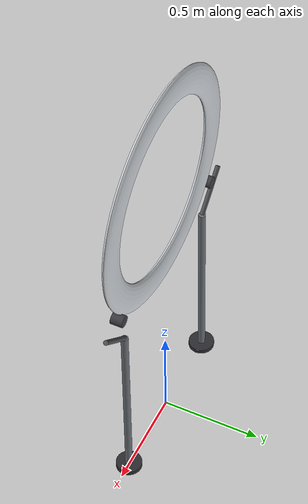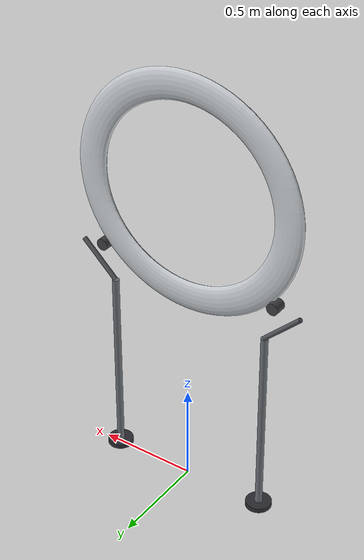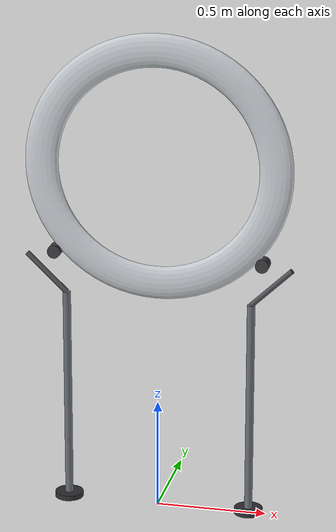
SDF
<?xml version='1.0'?>
<sdf version='1.7'>
  <model name='craic_2026_ring'>
    <static>1</static>
    <link name='ring_frame'>
      <pose>0 0 1.6 0 0 0</pose>

      <collision name='ring_collision_0'>
        <pose>0.525 0 0 0 1.570796 0</pose>
        <geometry>
          <box>
            <size>0.137445 0.04 0.15</size>
          </box>
        </geometry>
      </collision>

      <collision name='ring_collision_1'>
        <pose>0.507111 0 0.13588 0 1.832596 0</pose>
        <geometry>
          <box>
            <size>0.137445 0.04 0.15</size>
          </box>
        </geometry>
      </collision>

      <collision name='ring_collision_2'>
        <pose>0.454663 0 0.2625 0 2.094395 0</pose>
        <geometry>
          <box>
            <size>0.137445 0.04 0.15</size>
          </box>
        </geometry>
      </collision>

      <collision name='ring_collision_3'>
        <pose>0.371231 0 0.371231 0 2.356194 0</pose>
        <geometry>
          <box>
            <size>0.137445 0.04 0.15</size>
          </box>
        </geometry>
      </collision>

      <collision name='ring_collision_4'>
        <pose>0.2625 0 0.454663 0 2.617994 0</pose>
        <geometry>
          <box>
            <size>0.137445 0.04 0.15</size>
          </box>
        </geometry>
      </collision>

      <collision name='ring_collision_5'>
        <pose>0.13588 0 0.507111 0 2.879793 0</pose>
        <geometry>
          <box>
            <size>0.137445 0.04 0.15</size>
          </box>
        </geometry>
      </collision>

      <collision name='ring_collision_6'>
        <pose>0 0 0.525 0 3.141593 0</pose>
        <geometry>
          <box>
            <size>0.137445 0.04 0.15</size>
          </box>
        </geometry>
      </collision>

      <collision name='ring_collision_7'>
        <pose>-0.13588 0 0.507111 0 3.403392 0</pose>
        <geometry>
          <box>
            <size>0.137445 0.04 0.15</size>
          </box>
        </geometry>
      </collision>

      <collision name='ring_collision_8'>
        <pose>-0.2625 0 0.454663 0 3.665191 0</pose>
        <geometry>
          <box>
            <size>0.137445 0.04 0.15</size>
          </box>
        </geometry>
      </collision>

      <collision name='ring_collision_9'>
        <pose>-0.371231 0 0.371231 0 3.926991 0</pose>
        <geometry>
          <box>
            <size>0.137445 0.04 0.15</size>
          </box>
        </geometry>
      </collision>

      <collision name='ring_collision_10'>
        <pose>-0.454663 0 0.2625 0 4.18879 0</pose>
        <geometry>
          <box>
            <size>0.137445 0.04 0.15</size>
          </box>
        </geometry>
      </collision>

      <collision name='ring_collision_11'>
        <pose>-0.507111 0 0.13588 0 4.45059 0</pose>
        <geometry>
          <box>
            <size>0.137445 0.04 0.15</size>
          </box>
        </geometry>
      </collision>

      <collision name='ring_collision_12'>
        <pose>-0.525 0 0 0 4.712389 0</pose>
        <geometry>
          <box>
            <size>0.137445 0.04 0.15</size>
          </box>
        </geometry>
      </collision>

      <collision name='ring_collision_13'>
        <pose>-0.507111 0 -0.13588 0 4.974188 0</pose>
        <geometry>
          <box>
            <size>0.137445 0.04 0.15</size>
          </box>
        </geometry>
      </collision>

      <collision name='ring_collision_14'>
        <pose>-0.454663 0 -0.2625 0 5.235988 0</pose>
        <geometry>
          <box>
            <size>0.137445 0.04 0.15</size>
          </box>
        </geometry>
      </collision>

      <collision name='ring_collision_15'>
        <pose>-0.371231 0 -0.371231 0 5.497787 0</pose>
        <geometry>
          <box>
            <size>0.137445 0.04 0.15</size>
          </box>
        </geometry>
      </collision>

      <collision name='ring_collision_16'>
        <pose>-0.2625 0 -0.454663 0 5.759587 0</pose>
        <geometry>
          <box>
            <size>0.137445 0.04 0.15</size>
          </box>
        </geometry>
      </collision>

      <collision name='ring_collision_17'>
        <pose>-0.13588 0 -0.507111 0 6.021386 0</pose>
        <geometry>
          <box>
            <size>0.137445 0.04 0.15</size>
          </box>
        </geometry>
      </collision>

      <collision name='ring_collision_18'>
        <pose>-0 0 -0.525 0 6.283185 0</pose>
        <geometry>
          <box>
            <size>0.137445 0.04 0.15</size>
          </box>
        </geometry>
      </collision>

      <collision name='ring_collision_19'>
        <pose>0.13588 0 -0.507111 0 6.544985 0</pose>
        <geometry>
          <box>
            <size>0.137445 0.04 0.15</size>
          </box>
        </geometry>
      </collision>

      <collision name='ring_collision_20'>
        <pose>0.2625 0 -0.454663 0 6.806784 0</pose>
        <geometry>
          <box>
            <size>0.137445 0.04 0.15</size>
          </box>
        </geometry>
      </collision>

      <collision name='ring_collision_21'>
        <pose>0.371231 0 -0.371231 0 7.068583 0</pose>
        <geometry>
          <box>
            <size>0.137445 0.04 0.15</size>
          </box>
        </geometry>
      </collision>

      <collision name='ring_collision_22'>
        <pose>0.454663 0 -0.2625 0 7.330383 0</pose>
        <geometry>
          <box>
            <size>0.137445 0.04 0.15</size>
          </box>
        </geometry>
      </collision>

      <collision name='ring_collision_23'>
        <pose>0.507111 0 -0.13588 0 7.592182 0</pose>
        <geometry>
          <box>
            <size>0.137445 0.04 0.15</size>
          </box>
        </geometry>
      </collision>

      <visual name='ring_visual'>
        <geometry>
          <mesh>
            <uri>model://craic_2026_ring/meshes/ring.obj</uri>
          </mesh>
        </geometry>
          <material>
            <ambient>0.8 0.82 0.84 1</ambient>
            <diffuse>0.8 0.82 0.84 1</diffuse>
            <specular>0.9 0.9 0.9 1</specular>
            <emissive>0.02 0.02 0.02 1</emissive>
          </material>
      </visual>
    </link>

    <link name='ring_support_1'>
      <pose>-0.42 0 0.5 0 0 0</pose>
      <collision name='collision'>
        <geometry>
          <cylinder>
            <radius>0.018</radius>
            <length>1</length>
          </cylinder>
        </geometry>
      </collision>
      <visual name='visual'>
        <geometry>
          <cylinder>
            <radius>0.018</radius>
            <length>1</length>
          </cylinder>
        </geometry>
          <material>
            <ambient>0.42 0.44 0.46 1</ambient>
            <diffuse>0.42 0.44 0.46 1</diffuse>
            <specular>0.55 0.55 0.55 1</specular>
            <emissive>0 0 0 1</emissive>
          </material>
      </visual>
    </link>
    <link name='ring_support_foot_1'>
      <pose>-0.42 0 0.012 0 0 0</pose>
      <collision name='collision'>
        <geometry>
          <cylinder>
            <radius>0.065</radius>
            <length>0.024</length>
          </cylinder>
        </geometry>
      </collision>
      <visual name='visual'>
        <geometry>
          <cylinder>
            <radius>0.065</radius>
            <length>0.024</length>
          </cylinder>
        </geometry>
          <material>
            <ambient>0.18 0.18 0.2 1</ambient>
            <diffuse>0.18 0.18 0.2 1</diffuse>
            <specular>0.55 0.55 0.55 1</specular>
            <emissive>0 0 0 1</emissive>
          </material>
      </visual>
    </link>
    <link name='ring_brace_1'>
      <pose>-0.51 0 1.085757 0 -0.809534 0</pose>
      <collision name='collision'>
        <geometry>
          <cylinder>
            <radius>0.012</radius>
            <length>0.248631</length>
          </cylinder>
        </geometry>
      </collision>
      <visual name='visual'>
        <geometry>
          <cylinder>
            <radius>0.012</radius>
            <length>0.248631</length>
          </cylinder>
        </geometry>
          <material>
            <ambient>0.32 0.33 0.35 1</ambient>
            <diffuse>0.32 0.33 0.35 1</diffuse>
            <specular>0.55 0.55 0.55 1</specular>
            <emissive>0 0 0 1</emissive>
          </material>
      </visual>
    </link>
    <link name='ring_clamp_1'>
      <pose>-0.47 0 1.191514 1.570796 0 0</pose>
      <collision name='collision'>
        <geometry>
          <cylinder>
            <radius>0.03</radius>
            <length>0.06</length>
          </cylinder>
        </geometry>
      </collision>
      <visual name='visual'>
        <geometry>
          <cylinder>
            <radius>0.03</radius>
            <length>0.06</length>
          </cylinder>
        </geometry>
          <material>
            <ambient>0.24 0.24 0.26 1</ambient>
            <diffuse>0.24 0.24 0.26 1</diffuse>
            <specular>0.55 0.55 0.55 1</specular>
            <emissive>0 0 0 1</emissive>
          </material>
      </visual>
    </link>
    <link name='ring_support_2'>
      <pose>0.42 0 0.5 0 0 0</pose>
      <collision name='collision'>
        <geometry>
          <cylinder>
            <radius>0.018</radius>
            <length>1</length>
          </cylinder>
        </geometry>
      </collision>
      <visual name='visual'>
        <geometry>
          <cylinder>
            <radius>0.018</radius>
            <length>1</length>
          </cylinder>
        </geometry>
          <material>
            <ambient>0.42 0.44 0.46 1</ambient>
            <diffuse>0.42 0.44 0.46 1</diffuse>
            <specular>0.55 0.55 0.55 1</specular>
            <emissive>0 0 0 1</emissive>
          </material>
      </visual>
    </link>
    <link name='ring_support_foot_2'>
      <pose>0.42 0 0.012 0 0 0</pose>
      <collision name='collision'>
        <geometry>
          <cylinder>
            <radius>0.065</radius>
            <length>0.024</length>
          </cylinder>
        </geometry>
      </collision>
      <visual name='visual'>
        <geometry>
          <cylinder>
            <radius>0.065</radius>
            <length>0.024</length>
          </cylinder>
        </geometry>
          <material>
            <ambient>0.18 0.18 0.2 1</ambient>
            <diffuse>0.18 0.18 0.2 1</diffuse>
            <specular>0.55 0.55 0.55 1</specular>
            <emissive>0 0 0 1</emissive>
          </material>
      </visual>
    </link>
    <link name='ring_brace_2'>
      <pose>0.51 0 1.085757 0 0.809534 0</pose>
      <collision name='collision'>
        <geometry>
          <cylinder>
            <radius>0.012</radius>
            <length>0.248631</length>
          </cylinder>
        </geometry>
      </collision>
      <visual name='visual'>
        <geometry>
          <cylinder>
            <radius>0.012</radius>
            <length>0.248631</length>
          </cylinder>
        </geometry>
          <material>
            <ambient>0.32 0.33 0.35 1</ambient>
            <diffuse>0.32 0.33 0.35 1</diffuse>
            <specular>0.55 0.55 0.55 1</specular>
            <emissive>0 0 0 1</emissive>
          </material>
      </visual>
    </link>
    <link name='ring_clamp_2'>
      <pose>0.47 0 1.191514 1.570796 0 0</pose>
      <collision name='collision'>
        <geometry>
          <cylinder>
            <radius>0.03</radius>
            <length>0.06</length>
          </cylinder>
        </geometry>
      </collision>
      <visual name='visual'>
        <geometry>
          <cylinder>
            <radius>0.03</radius>
            <length>0.06</length>
          </cylinder>
        </geometry>
          <material>
            <ambient>0.24 0.24 0.26 1</ambient>
            <diffuse>0.24 0.24 0.26 1</diffuse>
            <specular>0.55 0.55 0.55 1</specular>
            <emissive>0 0 0 1</emissive>
          </material>
      </visual>
    </link>
  </model>
</sdf>
